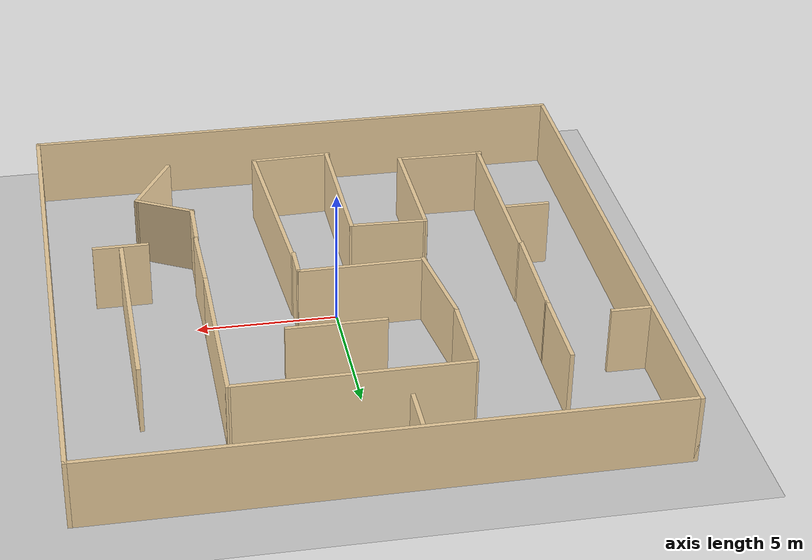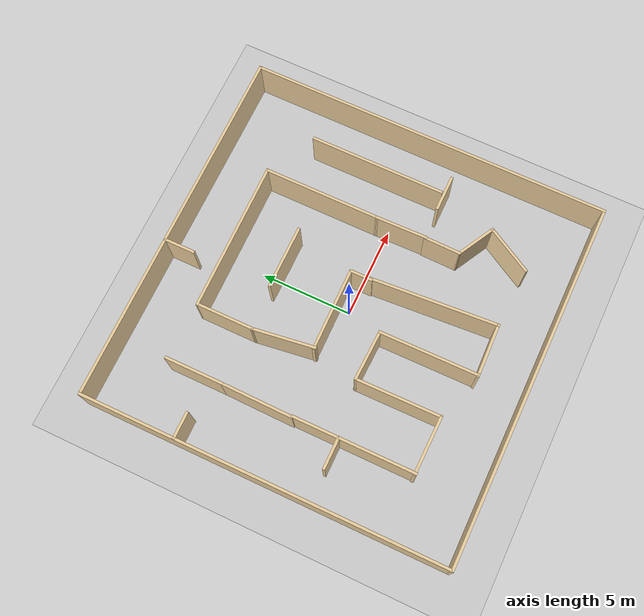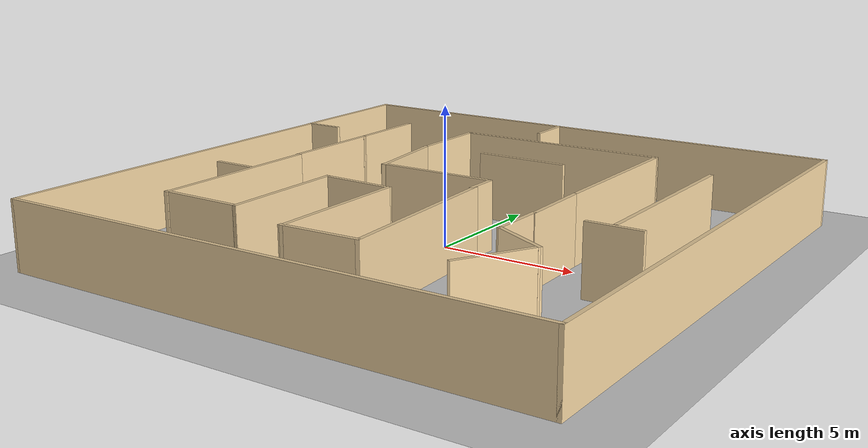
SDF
<sdf version="1.7">
 <world name="default">
  <light name="sun" type="directional">
   <pose>0 0 10 0 -0 0</pose>
   <diffuse>0.8 0.8 0.8 1</diffuse>
   <specular>0.2 0.2 0.2 1</specular>
   <attenuation>
    <range>1000</range>
    <constant>0.9</constant>
    <linear>0.01</linear>
    <quadratic>0.001</quadratic>
   </attenuation>
   <direction>-0.5 0.1 -0.9</direction>
   <spot><inner_angle>0</inner_angle><outer_angle>0</outer_angle><falloff>0</falloff></spot>
  </light>
  <model name="ground_plane">
   <static>1</static>
   <link name="link">
    <collision name="collision">
     <geometry><plane><normal>0 0 1</normal><size>100 100</size></plane></geometry>
     <surface>
      <contact><collide_bitmask>65535</collide_bitmask></contact>
      <friction><ode><mu>100</mu><mu2>50</mu2></ode></friction>
     </surface>
    </collision>
    <visual name="visual">
     <cast_shadows>0</cast_shadows>
     <geometry><plane><normal>0 0 1</normal><size>100 100</size></plane></geometry>
     <material>
      <script><uri>file://media/materials/scripts/gazebo.material</uri><name>Gazebo/Grey</name></script>
     </material>
    </visual>
   </link>
  </model>
  <gravity>0 0 -9.8</gravity>
  <magnetic_field>6e-06 2.3e-05 -4.2e-05</magnetic_field>
  <atmosphere type="adiabatic"/>
  <physics type="ode">
   <max_step_size>0.001</max_step_size>
   <real_time_factor>1</real_time_factor>
   <real_time_update_rate>1000</real_time_update_rate>
  </physics>
  <scene><ambient>0.4 0.4 0.4 1</ambient><background>0.7 0.7 0.7 1</background><shadows>1</shadows></scene>
  <spherical_coordinates>
   <surface_model>EARTH_WGS84</surface_model>
   <latitude_deg>0</latitude_deg>
   <longitude_deg>0</longitude_deg>
   <elevation>0</elevation>
   <heading_deg>0</heading_deg>
  </spherical_coordinates>
  <model name="floorplan4">
   <link name="Wall_0">
    <collision name="Wall_0_Collision">
     <geometry><box><size>20.15 0.15 2.5</size></box></geometry>
     <pose>0 0 1.25 0 -0 0</pose>
    </collision>
    <visual name="Wall_0_Visual">
     <pose>0 0 1.25 0 -0 0</pose>
     <geometry><box><size>20.15 0.15 2.5</size></box></geometry>
     <material>
      <script><uri>file://media/materials/scripts/gazebo.material</uri><name>Gazebo/Grey</name></script>
      <ambient>0.921569 0.807843 0.615686 1</ambient>
     </material>
     <meta><layer>0</layer></meta>
    </visual>
    <pose>-10 0 0 0 -0 1.5708</pose>
   </link>
   <link name="Wall_10">
    <collision name="Wall_10_Collision">
     <geometry><box><size>6.75 0.15 2.5</size></box></geometry>
     <pose>0 0 1.25 0 -0 0</pose>
    </collision>
    <visual name="Wall_10_Visual">
     <pose>0 0 1.25 0 -0 0</pose>
     <geometry><box><size>6.75 0.15 2.5</size></box></geometry>
     <material>
      <script><uri>file://media/materials/scripts/gazebo.material</uri><name>Gazebo/Grey</name></script>
      <ambient>0.921569 0.807843 0.615686 1</ambient>
     </material>
     <meta><layer>0</layer></meta>
    </visual>
    <pose>-6.58605 -3.31348 0 0 -0 -1.5708</pose>
   </link>
   <link name="Wall_12">
    <collision name="Wall_12_Collision">
     <geometry><box><size>3.20383 0.15 2.5</size></box></geometry>
     <pose>0 0 1.25 0 -0 0</pose>
    </collision>
    <visual name="Wall_12_Visual">
     <pose>0 0 1.25 0 -0 0</pose>
     <geometry><box><size>3.20383 0.15 2.5</size></box></geometry>
     <material>
      <script><uri>file://media/materials/scripts/gazebo.material</uri><name>Gazebo/Grey</name></script>
      <ambient>0.921569 0.807843 0.615686 1</ambient>
     </material>
     <meta><layer>0</layer></meta>
    </visual>
    <pose>-5.10584 -6.59021 0 0 -0 -0.015235</pose>
   </link>
   <link name="Wall_13">
    <collision name="Wall_13_Collision">
     <geometry><box><size>4.75 0.15 2.5</size></box></geometry>
     <pose>0 0 1.25 0 -0 0</pose>
    </collision>
    <visual name="Wall_13_Visual">
     <pose>0 0 1.25 0 -0 0</pose>
     <geometry><box><size>4.75 0.15 2.5</size></box></geometry>
     <material>
      <script><uri>file://media/materials/scripts/gazebo.material</uri><name>Gazebo/Grey</name></script>
      <ambient>0.921569 0.807843 0.615686 1</ambient>
     </material>
     <meta><layer>0</layer></meta>
    </visual>
    <pose>-3.55579 -4.31324 0 0 -0 1.58089</pose>
   </link>
   <link name="Wall_14">
    <collision name="Wall_14_Collision">
     <geometry><box><size>2.84465 0.15 2.5</size></box></geometry>
     <pose>0 0 1.25 0 -0 0</pose>
    </collision>
    <visual name="Wall_14_Visual">
     <pose>0 0 1.25 0 -0 0</pose>
     <geometry><box><size>2.84465 0.15 2.5</size></box></geometry>
     <material>
      <script><uri>file://media/materials/scripts/gazebo.material</uri><name>Gazebo/Grey</name></script>
      <ambient>0.921569 0.807843 0.615686 1</ambient>
     </material>
     <meta><layer>0</layer></meta>
    </visual>
    <pose>-2.2325 -2.06 0 0 -0 -0.034891</pose>
   </link>
   <link name="Wall_15">
    <collision name="Wall_15_Collision">
     <geometry><box><size>5.5 0.15 2.5</size></box></geometry>
     <pose>0 0 1.25 0 -0 0</pose>
    </collision>
    <visual name="Wall_15_Visual">
     <pose>0 0 1.25 0 -0 0</pose>
     <geometry><box><size>5.5 0.15 2.5</size></box></geometry>
     <material>
      <script><uri>file://media/materials/scripts/gazebo.material</uri><name>Gazebo/Grey</name></script>
      <ambient>0.921569 0.807843 0.615686 1</ambient>
     </material>
     <meta><layer>0</layer></meta>
    </visual>
    <pose>-0.862763 -4.78176 0 0 -0 -1.56211</pose>
   </link>
   <link name="Wall_16">
    <collision name="Wall_16_Collision">
     <geometry><box><size>2.94941 0.15 2.5</size></box></geometry>
     <pose>0 0 1.25 0 -0 0</pose>
    </collision>
    <visual name="Wall_16_Visual">
     <pose>0 0 1.25 0 -0 0</pose>
     <geometry><box><size>2.94941 0.15 2.5</size></box></geometry>
     <material>
      <script><uri>file://media/materials/scripts/gazebo.material</uri><name>Gazebo/Grey</name></script>
      <ambient>0.921569 0.807843 0.615686 1</ambient>
     </material>
     <meta><layer>0</layer></meta>
    </visual>
    <pose>0.512879 -7.41 0 0 -0 0.033245</pose>
   </link>
   <link name="Wall_17">
    <collision name="Wall_17_Collision">
     <geometry><box><size>7.0622 0.15 2.5</size></box></geometry>
     <pose>0 0 1.25 0 -0 0</pose>
    </collision>
    <visual name="Wall_17_Visual">
     <pose>0 0 1.25 0 -0 0</pose>
     <geometry><box><size>7.0622 0.15 2.5</size></box></geometry>
     <material>
      <script><uri>file://media/materials/scripts/gazebo.material</uri><name>Gazebo/Grey</name></script>
      <ambient>0.921569 0.807843 0.615686 1</ambient>
     </material>
     <meta><layer>0</layer></meta>
    </visual>
    <pose>1.72571 -3.91521 0 0 -0 1.63815</pose>
   </link>
   <link name="Wall_18">
    <collision name="Wall_18_Collision">
     <geometry><box><size>1.25 0.15 2.5</size></box></geometry>
     <pose>0 0 1.25 0 -0 0</pose>
    </collision>
    <visual name="Wall_18_Visual">
     <pose>0 0 1.25 0 -0 0</pose>
     <geometry><box><size>1.25 0.15 2.5</size></box></geometry>
     <material>
      <script><uri>file://media/materials/scripts/gazebo.material</uri><name>Gazebo/Grey</name></script>
      <ambient>0.921569 0.807843 0.615686 1</ambient>
     </material>
     <meta><layer>0</layer></meta>
    </visual>
    <pose>1.44657 -0.01 0 0 -0 1.5708</pose>
   </link>
   <link name="Wall_19">
    <collision name="Wall_19_Collision">
     <geometry><box><size>4.58153 0.15 2.5</size></box></geometry>
     <pose>0 0 1.25 0 -0 0</pose>
    </collision>
    <visual name="Wall_19_Visual">
     <pose>0 0 1.25 0 -0 0</pose>
     <geometry><box><size>4.58153 0.15 2.5</size></box></geometry>
     <material>
      <script><uri>file://media/materials/scripts/gazebo.material</uri><name>Gazebo/Grey</name></script>
      <ambient>0.921569 0.807843 0.615686 1</ambient>
     </material>
     <meta><layer>0</layer></meta>
    </visual>
    <pose>-0.815597 0.563262 0 0 -0 -3.13109</pose>
   </link>
   <link name="Wall_2">
    <collision name="Wall_2_Collision">
     <geometry><box><size>20.15 0.15 2.5</size></box></geometry>
     <pose>0 0 1.25 0 -0 0</pose>
    </collision>
    <visual name="Wall_2_Visual">
     <pose>0 0 1.25 0 -0 0</pose>
     <geometry><box><size>20.15 0.15 2.5</size></box></geometry>
     <material>
      <script><uri>file://media/materials/scripts/gazebo.material</uri><name>Gazebo/Grey</name></script>
      <ambient>0.921569 0.807843 0.615686 1</ambient>
     </material>
     <meta><layer>0</layer></meta>
    </visual>
    <pose>0 -10 0 0 -0 0</pose>
   </link>
   <link name="Wall_20">
    <collision name="Wall_20_Collision">
     <geometry><box><size>3.46299 0.15 2.5</size></box></geometry>
     <pose>0 0 1.25 0 -0 0</pose>
    </collision>
    <visual name="Wall_20_Visual">
     <pose>0 0 1.25 0 -0 0</pose>
     <geometry><box><size>3.46299 0.15 2.5</size></box></geometry>
     <material>
      <script><uri>file://media/materials/scripts/gazebo.material</uri><name>Gazebo/Grey</name></script>
      <ambient>0.921569 0.807843 0.615686 1</ambient>
     </material>
     <meta><layer>0</layer></meta>
    </visual>
    <pose>-3.20886 2.13474 0 0 -0 1.70652</pose>
   </link>
   <link name="Wall_21">
    <collision name="Wall_21_Collision">
     <geometry><box><size>3.25 0.15 2.5</size></box></geometry>
     <pose>0 0 1.25 0 -0 0</pose>
    </collision>
    <visual name="Wall_21_Visual">
     <pose>0 0 1.25 0 -0 0</pose>
     <geometry><box><size>3.25 0.15 2.5</size></box></geometry>
     <material>
      <script><uri>file://media/materials/scripts/gazebo.material</uri><name>Gazebo/Grey</name></script>
      <ambient>0.921569 0.807843 0.615686 1</ambient>
     </material>
     <meta><layer>0</layer></meta>
    </visual>
    <pose>-3.433 5.326 0 0 -0 1.5708</pose>
   </link>
   <link name="Wall_22">
    <collision name="Wall_22_Collision">
     <geometry><box><size>8.26606 0.15 2.5</size></box></geometry>
     <pose>0 0 1.25 0 -0 0</pose>
    </collision>
    <visual name="Wall_22_Visual">
     <pose>0 0 1.25 0 -0 0</pose>
     <geometry><box><size>8.26606 0.15 2.5</size></box></geometry>
     <material>
      <script><uri>file://media/materials/scripts/gazebo.material</uri><name>Gazebo/Grey</name></script>
      <ambient>0.921569 0.807843 0.615686 1</ambient>
     </material>
     <meta><layer>0</layer></meta>
    </visual>
    <pose>0.624917 6.90659 0 0 -0 0.007538</pose>
   </link>
   <link name="Wall_23">
    <collision name="Wall_23_Collision">
     <geometry><box><size>6.5 0.15 2.5</size></box></geometry>
     <pose>0 0 1.25 0 -0 0</pose>
    </collision>
    <visual name="Wall_23_Visual">
     <pose>0 0 1.25 0 -0 0</pose>
     <geometry><box><size>6.5 0.15 2.5</size></box></geometry>
     <material>
      <script><uri>file://media/materials/scripts/gazebo.material</uri><name>Gazebo/Grey</name></script>
      <ambient>0.921569 0.807843 0.615686 1</ambient>
     </material>
     <meta><layer>0</layer></meta>
    </visual>
    <pose>4.68283 3.76218 0 0 -0 -1.5708</pose>
   </link>
   <link name="Wall_24">
    <collision name="Wall_24_Collision">
     <geometry><box><size>2.89702 0.15 2.5</size></box></geometry>
     <pose>0 0 1.25 0 -0 0</pose>
    </collision>
    <visual name="Wall_24_Visual">
     <pose>0 0 1.25 0 -0 0</pose>
     <geometry><box><size>2.89702 0.15 2.5</size></box></geometry>
     <material>
      <script><uri>file://media/materials/scripts/gazebo.material</uri><name>Gazebo/Grey</name></script>
      <ambient>0.921569 0.807843 0.615686 1</ambient>
     </material>
     <meta><layer>0</layer></meta>
    </visual>
    <pose>4.70819 -0.786098 0 0 -0 -1.55234</pose>
   </link>
   <link name="Wall_25">
    <collision name="Wall_25_Collision">
     <geometry><box><size>2.06216 0.15 2.5</size></box></geometry>
     <pose>0 0 1.25 0 -0 0</pose>
    </collision>
    <visual name="Wall_25_Visual">
     <pose>0 0 1.25 0 -0 0</pose>
     <geometry><box><size>2.06216 0.15 2.5</size></box></geometry>
     <material>
      <script><uri>file://media/materials/scripts/gazebo.material</uri><name>Gazebo/Grey</name></script>
      <ambient>0.921569 0.807843 0.615686 1</ambient>
     </material>
     <meta><layer>0</layer></meta>
    </visual>
    <pose>4.68748 -3.11519 0 0 -0 -1.58699</pose>
   </link>
   <link name="Wall_26">
    <collision name="Wall_26_Collision">
     <geometry><box><size>2.33523 0.15 2.5</size></box></geometry>
     <pose>0 0 1.25 0 -0 0</pose>
    </collision>
    <visual name="Wall_26_Visual">
     <pose>0 0 1.25 0 -0 0</pose>
     <geometry><box><size>2.33523 0.15 2.5</size></box></geometry>
     <material>
      <script><uri>file://media/materials/scripts/gazebo.material</uri><name>Gazebo/Grey</name></script>
      <ambient>0.921569 0.807843 0.615686 1</ambient>
     </material>
     <meta><layer>0</layer></meta>
    </visual>
    <pose>5.633 -4.591 0 0 -0 -0.495987</pose>
   </link>
   <link name="Wall_27">
    <collision name="Wall_27_Collision">
     <geometry><box><size>2.91652 0.15 2.5</size></box></geometry>
     <pose>0 0 1.25 0 -0 0</pose>
    </collision>
    <visual name="Wall_27_Visual">
     <pose>0 0 1.25 0 -0 0</pose>
     <geometry><box><size>2.91652 0.15 2.5</size></box></geometry>
     <material>
      <script><uri>file://media/materials/scripts/gazebo.material</uri><name>Gazebo/Grey</name></script>
      <ambient>0.921569 0.807843 0.615686 1</ambient>
     </material>
     <meta><layer>0</layer></meta>
    </visual>
    <pose>5.912 -6.3145 0 0 -0 -2.08636</pose>
   </link>
   <link name="Wall_29">
    <collision name="Wall_29_Collision">
     <geometry><box><size>3.5 0.15 2.5</size></box></geometry>
     <pose>0 0 1.25 0 -0 0</pose>
    </collision>
    <visual name="Wall_29_Visual">
     <pose>0 0 1.25 0 -0 0</pose>
     <geometry><box><size>3.5 0.15 2.5</size></box></geometry>
     <material>
      <script><uri>file://media/materials/scripts/gazebo.material</uri><name>Gazebo/Grey</name></script>
      <ambient>0.921569 0.807843 0.615686 1</ambient>
     </material>
     <meta><layer>0</layer></meta>
    </visual>
    <pose>0.680237 3.999 0 0 -0 0</pose>
   </link>
   <link name="Wall_33">
    <collision name="Wall_33_Collision">
     <geometry><box><size>2 0.15 2.5</size></box></geometry>
     <pose>0 0 1.25 0 -0 0</pose>
    </collision>
    <visual name="Wall_33_Visual">
     <pose>0 0 1.25 0 -0 0</pose>
     <geometry><box><size>2 0.15 2.5</size></box></geometry>
     <material>
      <script><uri>file://media/materials/scripts/gazebo.material</uri><name>Gazebo/Grey</name></script>
      <ambient>0.921569 0.807843 0.615686 1</ambient>
     </material>
     <meta><layer>0</layer></meta>
    </visual>
    <pose>7.41197 -2.049 0 0 -0 0</pose>
   </link>
   <link name="Wall_35">
    <collision name="Wall_35_Collision">
     <geometry><box><size>7.5 0.15 2.5</size></box></geometry>
     <pose>0 0 1.25 0 -0 0</pose>
    </collision>
    <visual name="Wall_35_Visual">
     <pose>0 0 1.25 0 -0 0</pose>
     <geometry><box><size>7.5 0.15 2.5</size></box></geometry>
     <material>
      <script><uri>file://media/materials/scripts/gazebo.material</uri><name>Gazebo/Grey</name></script>
      <ambient>0.921569 0.807843 0.615686 1</ambient>
     </material>
     <meta><layer>0</layer></meta>
    </visual>
    <pose>7.40033 1.81177 0 0 -0 -1.5708</pose>
   </link>
   <link name="Wall_4">
    <collision name="Wall_4_Collision">
     <geometry><box><size>20.15 0.15 2.5</size></box></geometry>
     <pose>0 0 1.25 0 -0 0</pose>
    </collision>
    <visual name="Wall_4_Visual">
     <pose>0 0 1.25 0 -0 0</pose>
     <geometry><box><size>20.15 0.15 2.5</size></box></geometry>
     <material>
      <script><uri>file://media/materials/scripts/gazebo.material</uri><name>Gazebo/Grey</name></script>
      <ambient>0.921569 0.807843 0.615686 1</ambient>
     </material>
     <meta><layer>0</layer></meta>
    </visual>
    <pose>10 0 0 0 -0 1.5708</pose>
   </link>
   <link name="Wall_6">
    <collision name="Wall_6_Collision">
     <geometry><box><size>20.15 0.15 2.5</size></box></geometry>
     <pose>0 0 1.25 0 -0 0</pose>
    </collision>
    <visual name="Wall_6_Visual">
     <pose>0 0 1.25 0 -0 0</pose>
     <geometry><box><size>20.15 0.15 2.5</size></box></geometry>
     <material>
      <script><uri>file://media/materials/scripts/gazebo.material</uri><name>Gazebo/Grey</name></script>
      <ambient>0.921569 0.807843 0.615686 1</ambient>
     </material>
     <meta><layer>0</layer></meta>
    </visual>
    <pose>0 10 0 0 -0 0</pose>
   </link>
   <link name="Wall_64">
    <collision name="Wall_64_Collision">
     <geometry><box><size>1.5 0.15 2.5</size></box></geometry>
     <pose>0 0 1.25 0 -0 0</pose>
    </collision>
    <visual name="Wall_64_Visual">
     <pose>0 0 1.25 0 -0 0</pose>
     <geometry><box><size>1.5 0.15 2.5</size></box></geometry>
     <material>
      <script><uri>file://media/materials/scripts/gazebo.material</uri><name>Gazebo/Grey</name></script>
      <ambient>0.921569 0.807843 0.615686 1</ambient>
     </material>
     <meta><layer>0</layer></meta>
    </visual>
    <pose>-9.298 4.763 0 0 -0 0</pose>
   </link>
   <link name="Wall_66">
    <collision name="Wall_66_Collision">
     <geometry><box><size>1.75 0.15 2.5</size></box></geometry>
     <pose>0 0 1.25 0 -0 0</pose>
    </collision>
    <visual name="Wall_66_Visual">
     <pose>0 0 1.25 0 -0 0</pose>
     <geometry><box><size>1.75 0.15 2.5</size></box></geometry>
     <material>
      <script><uri>file://media/materials/scripts/gazebo.material</uri><name>Gazebo/Grey</name></script>
      <ambient>0.921569 0.807843 0.615686 1</ambient>
     </material>
     <meta><layer>0</layer></meta>
    </visual>
    <pose>-7.423 -2.494 0 0 -0 3.14159</pose>
   </link>
   <link name="Wall_68">
    <collision name="Wall_68_Collision">
     <geometry><box><size>1.75 0.15 2.5</size></box></geometry>
     <pose>0 0 1.25 0 -0 0</pose>
    </collision>
    <visual name="Wall_68_Visual">
     <pose>0 0 1.25 0 -0 0</pose>
     <geometry><box><size>1.75 0.15 2.5</size></box></geometry>
     <material>
      <script><uri>file://media/materials/scripts/gazebo.material</uri><name>Gazebo/Grey</name></script>
      <ambient>0.921569 0.807843 0.615686 1</ambient>
     </material>
     <meta><layer>0</layer></meta>
    </visual>
    <pose>-1.041 9.174 0 0 -0 -1.5708</pose>
   </link>
   <link name="Wall_8">
    <collision name="Wall_8_Collision">
     <geometry><box><size>3.25 0.15 2.5</size></box></geometry>
     <pose>0 0 1.25 0 -0 0</pose>
    </collision>
    <visual name="Wall_8_Visual">
     <pose>0 0 1.25 0 -0 0</pose>
     <geometry><box><size>3.25 0.15 2.5</size></box></geometry>
     <material>
      <script><uri>file://media/materials/scripts/gazebo.material</uri><name>Gazebo/Grey</name></script>
      <ambient>0.921569 0.807843 0.615686 1</ambient>
     </material>
     <meta><layer>0</layer></meta>
    </visual>
    <pose>-6.578 5.45 0 0 -0 -1.5708</pose>
   </link>
   <link name="Wall_9">
    <collision name="Wall_9_Collision">
     <geometry><box><size>4.01734 0.15 2.5</size></box></geometry>
     <pose>0 0 1.25 0 -0 0</pose>
    </collision>
    <visual name="Wall_9_Visual">
     <pose>0 0 1.25 0 -0 0</pose>
     <geometry><box><size>4.01734 0.15 2.5</size></box></geometry>
     <material>
      <script><uri>file://media/materials/scripts/gazebo.material</uri><name>Gazebo/Grey</name></script>
      <ambient>0.921569 0.807843 0.615686 1</ambient>
     </material>
     <meta><layer>0</layer></meta>
    </visual>
    <pose>-6.60529 1.96652 0 0 -0 -1.58491</pose>
   </link>
   <static>1</static>
  </model>
 </world>
</sdf>
